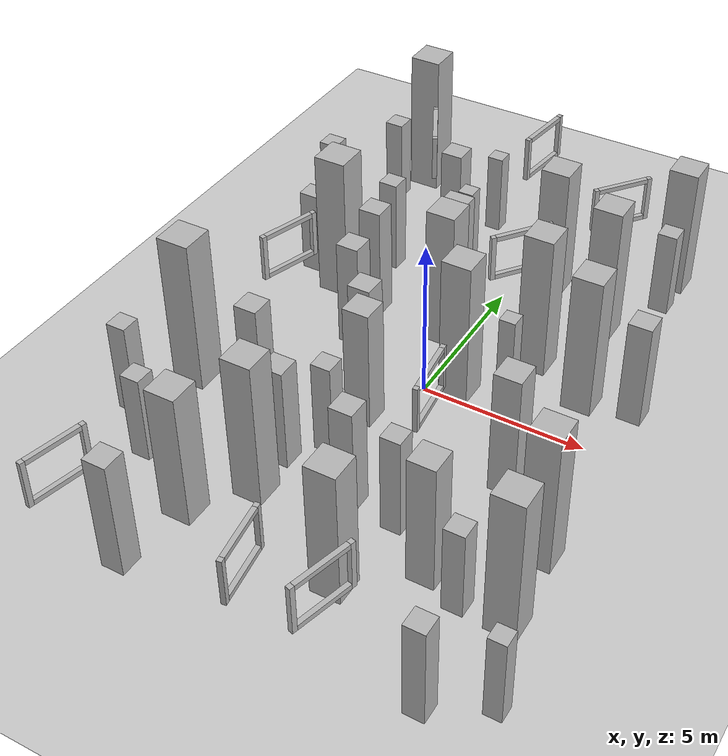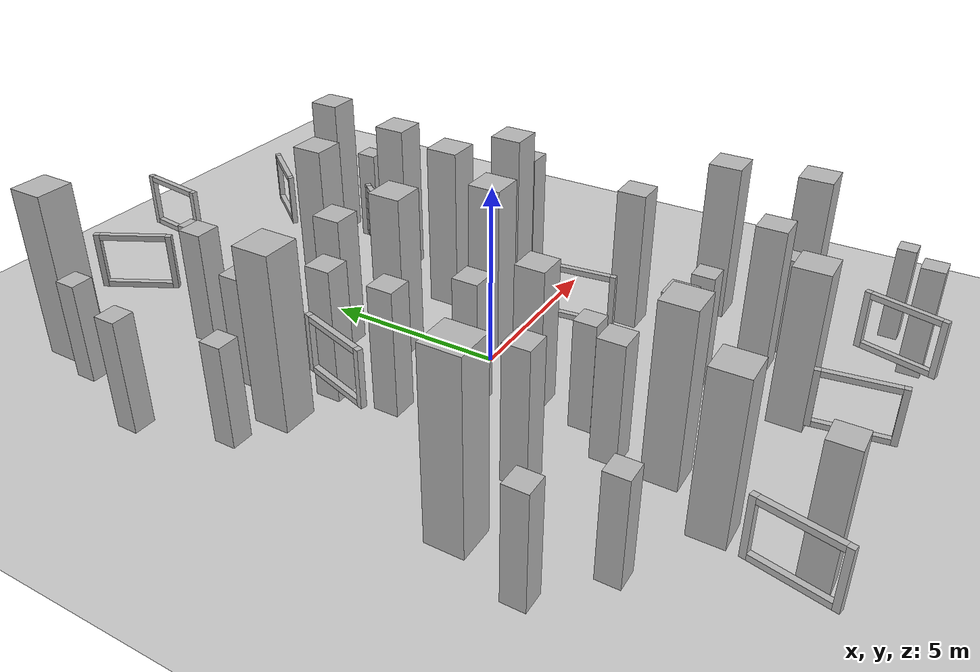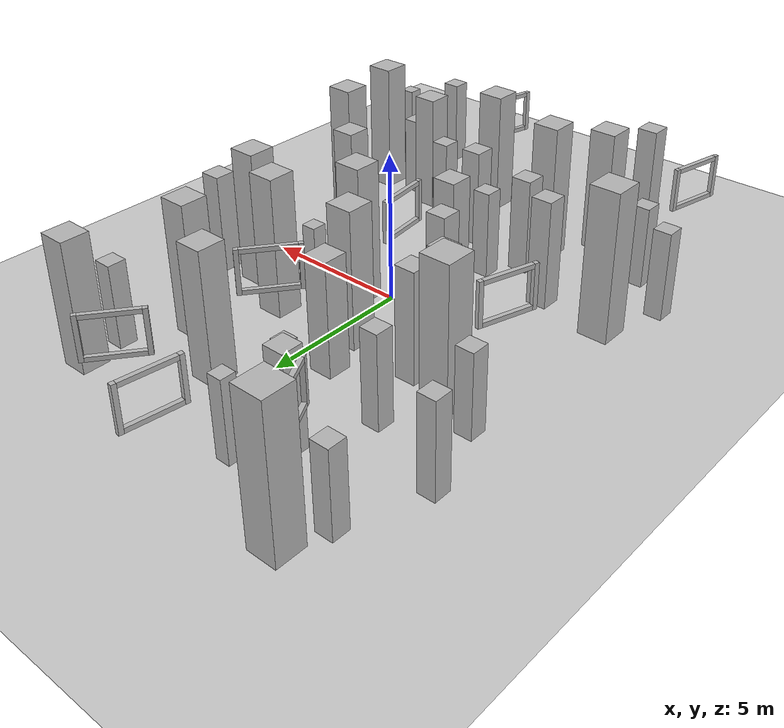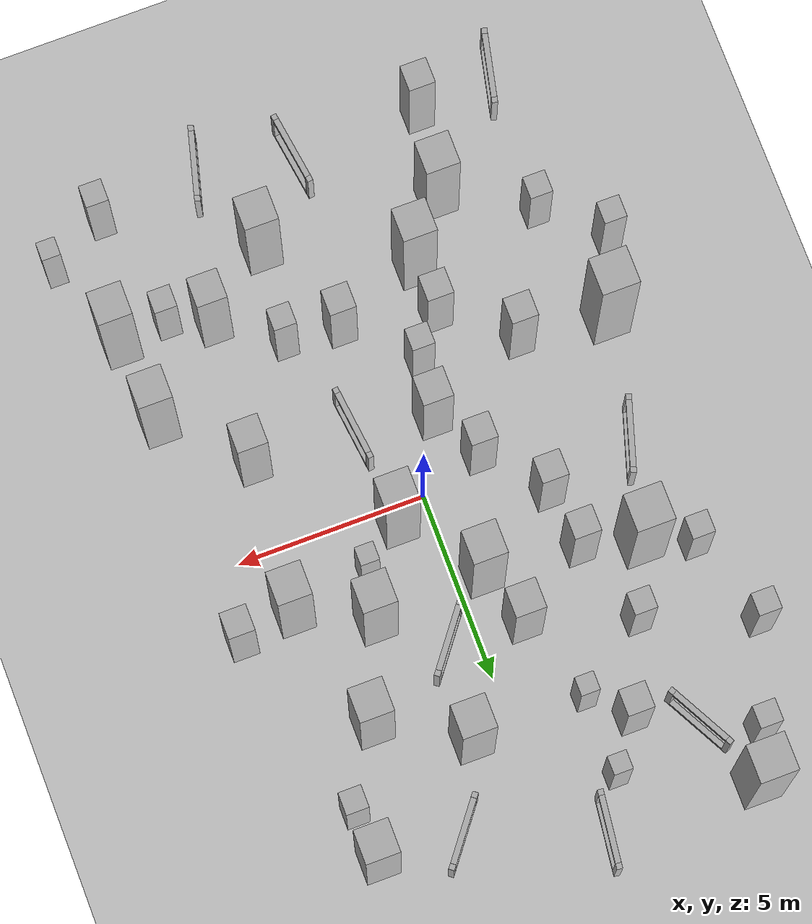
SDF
<sdf version="1.7">
 <world name="default">
  <model name="ground_plane">
   <static>1</static>
   <link name="link">
    <collision name="collision">
     <geometry><plane><normal>0 0 1</normal><size>200 200</size></plane></geometry>
     <surface>
      <contact><collide_bitmask>65535</collide_bitmask></contact>
      <friction><ode><mu>100</mu><mu2>50</mu2></ode></friction>
     </surface>
    </collision>
    <visual name="visual">
     <cast_shadows>0</cast_shadows>
     <geometry><plane><normal>0 0 1</normal><size>200 200</size></plane></geometry>
     <material>
      <script><uri>file://media/materials/scripts/gazebo.material</uri><name>Gazebo/Grey</name></script>
     </material>
    </visual>
   </link>
  </model>
  <model name="box_3">
   <static>true</static>
   <pose>1.6374741721011254 -7.5035165123878045 2.136414688476459 0.0 0.0 0.0</pose>
   <link name="link">
    <visual name="visual"><geometry><box><size>0.9 0.9 4.3</size></box></geometry></visual>
    <collision name="collision"><geometry><box><size>0.9 0.9 4.3</size></box></geometry></collision>
   </link>
  </model>
  <model name="box_5">
   <static>true</static>
   <pose>-3.901099638529079 4.930214343699699 1.567042621839245 0.0 0.0 0.0</pose>
   <link name="link">
    <visual name="visual"><geometry><box><size>0.6 0.6 3.1</size></box></geometry></visual>
    <collision name="collision"><geometry><box><size>0.6 0.6 3.1</size></box></geometry></collision>
   </link>
  </model>
  <model name="box_7">
   <static>true</static>
   <pose>-1.149961410587398 -3.3038791099475295 1.4869277379629757 0.0 0.0 0.0</pose>
   <link name="link">
    <visual name="visual"><geometry><box><size>0.6 0.6 3.0</size></box></geometry></visual>
    <collision name="collision"><geometry><box><size>0.6 0.6 3.0</size></box></geometry></collision>
   </link>
  </model>
  <model name="box_12">
   <static>true</static>
   <pose>4.154662268284227 1.7442738195147065 2.3055341713984867 0.0 0.0 0.0</pose>
   <link name="link">
    <visual name="visual"><geometry><box><size>0.9 0.9 4.6</size></box></geometry></visual>
    <collision name="collision"><geometry><box><size>0.9 0.9 4.6</size></box></geometry></collision>
   </link>
  </model>
  <model name="box_16">
   <static>true</static>
   <pose>2.0016474286041976 1.335935426501024 1.2670296802397991 0.0 0.0 0.0</pose>
   <link name="link">
    <visual name="visual"><geometry><box><size>0.5 0.5 2.5</size></box></geometry></visual>
    <collision name="collision"><geometry><box><size>0.5 0.5 2.5</size></box></geometry></collision>
   </link>
  </model>
  <model name="box_19">
   <static>true</static>
   <pose>-0.6598568763868897 2.462999022721501 2.314885577255534 0.0 0.0 0.0</pose>
   <link name="link">
    <visual name="visual"><geometry><box><size>0.9 0.9 4.6</size></box></geometry></visual>
    <collision name="collision"><geometry><box><size>0.9 0.9 4.6</size></box></geometry></collision>
   </link>
  </model>
  <model name="box_21">
   <static>true</static>
   <pose>-5.349554603878911 -5.998129897715598 1.4117946340675331 0.0 0.0 0.0</pose>
   <link name="link">
    <visual name="visual"><geometry><box><size>0.6 0.6 2.8</size></box></geometry></visual>
    <collision name="collision"><geometry><box><size>0.6 0.6 2.8</size></box></geometry></collision>
   </link>
  </model>
  <model name="box_24">
   <static>true</static>
   <pose>1.9281860284375085 -4.9544511991091955 1.5869351125205744 0.0 0.0 0.0</pose>
   <link name="link">
    <visual name="visual"><geometry><box><size>0.6 0.6 3.2</size></box></geometry></visual>
    <collision name="collision"><geometry><box><size>0.6 0.6 3.2</size></box></geometry></collision>
   </link>
  </model>
  <model name="box_28">
   <static>true</static>
   <pose>5.873173413648921 -6.407207383195566 2.277308977812114 0.0 0.0 0.0</pose>
   <link name="link">
    <visual name="visual"><geometry><box><size>0.9 0.9 4.6</size></box></geometry></visual>
    <collision name="collision"><geometry><box><size>0.9 0.9 4.6</size></box></geometry></collision>
   </link>
  </model>
  <model name="box_30">
   <static>true</static>
   <pose>-1.9374738062222399 6.321716639206549 1.3022219802854855 0.0 0.0 0.0</pose>
   <link name="link">
    <visual name="visual"><geometry><box><size>0.5 0.5 2.6</size></box></geometry></visual>
    <collision name="collision"><geometry><box><size>0.5 0.5 2.6</size></box></geometry></collision>
   </link>
  </model>
  <model name="box_32">
   <static>true</static>
   <pose>4.472853406482912 7.029900539645439 1.4248793129259325 0.0 0.0 0.0</pose>
   <link name="link">
    <visual name="visual"><geometry><box><size>0.6 0.6 2.8</size></box></geometry></visual>
    <collision name="collision"><geometry><box><size>0.6 0.6 2.8</size></box></geometry></collision>
   </link>
  </model>
  <model name="box_35">
   <static>true</static>
   <pose>-1.6689101174333771 -0.44696366028218293 1.765582517739746 0.0 0.0 0.0</pose>
   <link name="link">
    <visual name="visual"><geometry><box><size>0.7 0.7 3.5</size></box></geometry></visual>
    <collision name="collision"><geometry><box><size>0.7 0.7 3.5</size></box></geometry></collision>
   </link>
  </model>
  <model name="box_36">
   <static>true</static>
   <pose>3.791141431803112 -2.2452676537238965 2.018687643699053 0.0 0.0 0.0</pose>
   <link name="link">
    <visual name="visual"><geometry><box><size>0.8 0.8 4.0</size></box></geometry></visual>
    <collision name="collision"><geometry><box><size>0.8 0.8 4.0</size></box></geometry></collision>
   </link>
  </model>
  <model name="box_38">
   <static>true</static>
   <pose>5.631250221103311 1.97665094720257 1.6966540770779726 0.0 0.0 0.0</pose>
   <link name="link">
    <visual name="visual"><geometry><box><size>0.7 0.7 3.4</size></box></geometry></visual>
    <collision name="collision"><geometry><box><size>0.7 0.7 3.4</size></box></geometry></collision>
   </link>
  </model>
  <model name="box_39">
   <static>true</static>
   <pose>-6.760529323008647 6.018683804761302 1.5469005423583926 0.0 0.0 0.0</pose>
   <link name="link">
    <visual name="visual"><geometry><box><size>0.6 0.6 3.1</size></box></geometry></visual>
    <collision name="collision"><geometry><box><size>0.6 0.6 3.1</size></box></geometry></collision>
   </link>
  </model>
  <model name="box_40">
   <static>true</static>
   <pose>4.345088373565211 8.351698227290619 2.173059064849017 0.0 0.0 0.0</pose>
   <link name="link">
    <visual name="visual"><geometry><box><size>0.9 0.9 4.3</size></box></geometry></visual>
    <collision name="collision"><geometry><box><size>0.9 0.9 4.3</size></box></geometry></collision>
   </link>
  </model>
  <model name="box_41">
   <static>true</static>
   <pose>-1.9727804711928307 8.446386999244197 1.3515582533511177 0.0 0.0 0.0</pose>
   <link name="link">
    <visual name="visual"><geometry><box><size>0.5 0.5 2.7</size></box></geometry></visual>
    <collision name="collision"><geometry><box><size>0.5 0.5 2.7</size></box></geometry></collision>
   </link>
  </model>
  <model name="box_42">
   <static>true</static>
   <pose>-2.8641099914187933 7.1854738042553805 1.6404718298055347 0.0 0.0 0.0</pose>
   <link name="link">
    <visual name="visual"><geometry><box><size>0.7 0.7 3.3</size></box></geometry></visual>
    <collision name="collision"><geometry><box><size>0.7 0.7 3.3</size></box></geometry></collision>
   </link>
  </model>
  <model name="box_45">
   <static>true</static>
   <pose>1.0927321830077261 6.3478920243861054 2.204699280579846 0.0 0.0 0.0</pose>
   <link name="link">
    <visual name="visual"><geometry><box><size>0.9 0.9 4.4</size></box></geometry></visual>
    <collision name="collision"><geometry><box><size>0.9 0.9 4.4</size></box></geometry></collision>
   </link>
  </model>
  <model name="box_51">
   <static>true</static>
   <pose>-1.9723137954788115 -4.332571210216029 1.673909459743472 0.0 0.0 0.0</pose>
   <link name="link">
    <visual name="visual"><geometry><box><size>0.7 0.7 3.3</size></box></geometry></visual>
    <collision name="collision"><geometry><box><size>0.7 0.7 3.3</size></box></geometry></collision>
   </link>
  </model>
  <model name="box_52">
   <static>true</static>
   <pose>6.798217343340941 -8.794127891689296 1.3471029451879781 0.0 0.0 0.0</pose>
   <link name="link">
    <visual name="visual"><geometry><box><size>0.5 0.5 2.7</size></box></geometry></visual>
    <collision name="collision"><geometry><box><size>0.5 0.5 2.7</size></box></geometry></collision>
   </link>
  </model>
  <model name="box_59">
   <static>true</static>
   <pose>2.286156041978188 2.6676546383961295 2.3624028446304326 0.0 0.0 0.0</pose>
   <link name="link">
    <visual name="visual"><geometry><box><size>0.9 0.9 4.7</size></box></geometry></visual>
    <collision name="collision"><geometry><box><size>0.9 0.9 4.7</size></box></geometry></collision>
   </link>
  </model>
  <model name="box_63">
   <static>true</static>
   <pose>-6.8350867048885 -4.677663422589 1.5209972271922814 0.0 0.0 0.0</pose>
   <link name="link">
    <visual name="visual"><geometry><box><size>0.6 0.6 3.0</size></box></geometry></visual>
    <collision name="collision"><geometry><box><size>0.6 0.6 3.0</size></box></geometry></collision>
   </link>
  </model>
  <model name="box_64">
   <static>true</static>
   <pose>-2.9699520653689113 1.0597293070240692 1.750846045593824 0.0 0.0 0.0</pose>
   <link name="link">
    <visual name="visual"><geometry><box><size>0.7 0.7 3.5</size></box></geometry></visual>
    <collision name="collision"><geometry><box><size>0.7 0.7 3.5</size></box></geometry></collision>
   </link>
  </model>
  <model name="box_65">
   <static>true</static>
   <pose>4.559785438473767 -6.525660019454738 1.3994833442795747 0.0 0.0 0.0</pose>
   <link name="link">
    <visual name="visual"><geometry><box><size>0.6 0.6 2.8</size></box></geometry></visual>
    <collision name="collision"><geometry><box><size>0.6 0.6 2.8</size></box></geometry></collision>
   </link>
  </model>
  <model name="box_68">
   <static>true</static>
   <pose>-3.1929498904135443 2.6838757074767337 1.8319721185870084 0.0 0.0 0.0</pose>
   <link name="link">
    <visual name="visual"><geometry><box><size>0.7 0.7 3.7</size></box></geometry></visual>
    <collision name="collision"><geometry><box><size>0.7 0.7 3.7</size></box></geometry></collision>
   </link>
  </model>
  <model name="box_71">
   <static>true</static>
   <pose>3.2886073253509274 5.1126903984498036 2.2612772892453545 0.0 0.0 0.0</pose>
   <link name="link">
    <visual name="visual"><geometry><box><size>0.9 0.9 4.5</size></box></geometry></visual>
    <collision name="collision"><geometry><box><size>0.9 0.9 4.5</size></box></geometry></collision>
   </link>
  </model>
  <model name="box_76">
   <static>true</static>
   <pose>5.249219970856885 -9.641345203966608 1.5561383368883643 0.0 0.0 0.0</pose>
   <link name="link">
    <visual name="visual"><geometry><box><size>0.6 0.6 3.1</size></box></geometry></visual>
    <collision name="collision"><geometry><box><size>0.6 0.6 3.1</size></box></geometry></collision>
   </link>
  </model>
  <model name="box_77">
   <static>true</static>
   <pose>-0.9263325911271707 -1.7792653165331238 1.9629951117122544 0.0 0.0 0.0</pose>
   <link name="link">
    <visual name="visual"><geometry><box><size>0.8 0.8 3.9</size></box></geometry></visual>
    <collision name="collision"><geometry><box><size>0.8 0.8 3.9</size></box></geometry></collision>
   </link>
  </model>
  <model name="box_78">
   <static>true</static>
   <pose>-3.1026827783855246 -7.259072692983346 2.1697435533034986 0.0 0.0 0.0</pose>
   <link name="link">
    <visual name="visual"><geometry><box><size>0.9 0.9 4.3</size></box></geometry></visual>
    <collision name="collision"><geometry><box><size>0.9 0.9 4.3</size></box></geometry></collision>
   </link>
  </model>
  <model name="box_81">
   <static>true</static>
   <pose>-5.798767409336731 8.597310220572368 1.3851291635643586 0.0 0.0 0.0</pose>
   <link name="link">
    <visual name="visual"><geometry><box><size>0.6 0.6 2.8</size></box></geometry></visual>
    <collision name="collision"><geometry><box><size>0.6 0.6 2.8</size></box></geometry></collision>
   </link>
  </model>
  <model name="box_82">
   <static>true</static>
   <pose>-5.977036666980364 3.6041626208664788 1.3954942858404054 0.0 0.0 0.0</pose>
   <link name="link">
    <visual name="visual"><geometry><box><size>0.6 0.6 2.8</size></box></geometry></visual>
    <collision name="collision"><geometry><box><size>0.6 0.6 2.8</size></box></geometry></collision>
   </link>
  </model>
  <model name="box_84">
   <static>true</static>
   <pose>-3.4314039759266315 -9.526432634611737 1.8528716115264787 0.0 0.0 0.0</pose>
   <link name="link">
    <visual name="visual"><geometry><box><size>0.7 0.7 3.7</size></box></geometry></visual>
    <collision name="collision"><geometry><box><size>0.7 0.7 3.7</size></box></geometry></collision>
   </link>
  </model>
  <model name="box_85">
   <static>true</static>
   <pose>-5.231858211794101 9.859980106281405 2.401472119952705 0.0 0.0 0.0</pose>
   <link name="link">
    <visual name="visual"><geometry><box><size>1.0 1.0 4.8</size></box></geometry></visual>
    <collision name="collision"><geometry><box><size>1.0 1.0 4.8</size></box></geometry></collision>
   </link>
  </model>
  <model name="box_93">
   <static>true</static>
   <pose>-1.1758109340823424 3.9772366630998803 1.923240569579669 0.0 0.0 0.0</pose>
   <link name="link">
    <visual name="visual"><geometry><box><size>0.8 0.8 3.8</size></box></geometry></visual>
    <collision name="collision"><geometry><box><size>0.8 0.8 3.8</size></box></geometry></collision>
   </link>
  </model>
  <model name="box_102">
   <static>true</static>
   <pose>0.4483375277653465 -4.825162874936888 1.6995308805455562 0.0 0.0 0.0</pose>
   <link name="link">
    <visual name="visual"><geometry><box><size>0.7 0.7 3.4</size></box></geometry></visual>
    <collision name="collision"><geometry><box><size>0.7 0.7 3.4</size></box></geometry></collision>
   </link>
  </model>
  <model name="box_103">
   <static>true</static>
   <pose>-4.703819975883636 3.0972862836514246 2.4103803295662587 0.0 0.0 0.0</pose>
   <link name="link">
    <visual name="visual"><geometry><box><size>1.0 1.0 4.8</size></box></geometry></visual>
    <collision name="collision"><geometry><box><size>1.0 1.0 4.8</size></box></geometry></collision>
   </link>
  </model>
  <model name="box_104">
   <static>true</static>
   <pose>-1.9137028017793511 -5.729892390359861 2.348382545907523 0.0 0.0 0.0</pose>
   <link name="link">
    <visual name="visual"><geometry><box><size>0.9 0.9 4.7</size></box></geometry></visual>
    <collision name="collision"><geometry><box><size>0.9 0.9 4.7</size></box></geometry></collision>
   </link>
  </model>
  <model name="box_105">
   <static>true</static>
   <pose>0.8845889473123094 0.5017853023836327 2.3457996639570795 0.0 0.0 0.0</pose>
   <link name="link">
    <visual name="visual"><geometry><box><size>0.9 0.9 4.7</size></box></geometry></visual>
    <collision name="collision"><geometry><box><size>0.9 0.9 4.7</size></box></geometry></collision>
   </link>
  </model>
  <model name="box_115">
   <static>true</static>
   <pose>-6.034898037366467 -2.7039892044717506 2.494588051021787 0.0 0.0 0.0</pose>
   <link name="link">
    <visual name="visual"><geometry><box><size>1.0 1.0 5.0</size></box></geometry></visual>
    <collision name="collision"><geometry><box><size>1.0 1.0 5.0</size></box></geometry></collision>
   </link>
  </model>
  <model name="box_117">
   <static>true</static>
   <pose>5.66218194391589 -4.0874319169915285 2.2602143555469265 0.0 0.0 0.0</pose>
   <link name="link">
    <visual name="visual"><geometry><box><size>0.9 0.9 4.5</size></box></geometry></visual>
    <collision name="collision"><geometry><box><size>0.9 0.9 4.5</size></box></geometry></collision>
   </link>
  </model>
  <model name="box_118">
   <static>true</static>
   <pose>-3.6979912992955235 -2.9526057179941345 1.8646679392989285 0.0 0.0 0.0</pose>
   <link name="link">
    <visual name="visual"><geometry><box><size>0.7 0.7 3.7</size></box></geometry></visual>
    <collision name="collision"><geometry><box><size>0.7 0.7 3.7</size></box></geometry></collision>
   </link>
  </model>
  <model name="box_119">
   <static>true</static>
   <pose>3.465455286651885 -6.051477757185446 2.0672624394787515 0.0 0.0 0.0</pose>
   <link name="link">
    <visual name="visual"><geometry><box><size>0.8 0.8 4.1</size></box></geometry></visual>
    <collision name="collision"><geometry><box><size>0.8 0.8 4.1</size></box></geometry></collision>
   </link>
  </model>
  <model name="block_1">
   <pose>0.12081032278361548 -9.137055454709184 1.8995171241418918 0.0 0.0 0.14068325014009186</pose>
   <static>true</static>
   <link name="right_vertical_edge">
    <pose>0 0.925 0 0 0 0</pose>
    <visual name="right_visual">
     <geometry><box><size>0.15 0.15 1.5</size></box></geometry>
     <material>Gazebo/Blue</material>
    </visual>
    <collision name="right_collision"><geometry><box><size>0.15 0.15 1.5</size></box></geometry></collision>
   </link>
   <link name="left_vertical_edge">
    <pose>0 -0.925 0 0 0 0</pose>
    <visual name="left_visual">
     <geometry><box><size>0.15 0.15 1.5</size></box></geometry>
     <material>Gazebo/Blue</material>
    </visual>
    <collision name="left_collision"><geometry><box><size>0.15 0.15 1.5</size></box></geometry></collision>
   </link>
   <link name="top_horizontal_edge">
    <pose>0 0 0.675 0 0 0</pose>
    <visual name="top_visual">
     <geometry><box><size>0.15 1.7 0.15</size></box></geometry>
     <material>Gazebo/Blue</material>
    </visual>
    <collision name="top_collision"><geometry><box><size>0.15 1.7 0.15</size></box></geometry></collision>
   </link>
   <link name="bottom_horizontal_edge">
    <pose>0 0 -0.675 0 0 0</pose>
    <visual name="bottom_visual">
     <geometry><box><size>0.15 1.7  0.15</size></box></geometry>
     <material>Gazebo/Blue</material>
    </visual>
    <collision name="bottom_collision"><geometry><box><size>0.15 1.7 0.15</size></box></geometry></collision>
   </link>
   <joint name="right-top_joint" type="fixed">
    <parent>right_vertical_edge</parent>
    <child>top_horizontal_edge</child>
    <origin xyz="-0.925 0 0 0 0 0"/>
   </joint>
   <joint name="left-top_joint" type="fixed">
    <parent>left_vertical_edge</parent>
    <child>top_horizontal_edge</child>
    <origin xyz="0.925 0 0 0 0 0"/>
   </joint>
   <joint name="right-bottom_joint" type="fixed">
    <parent>right_vertical_edge</parent>
    <child>bottom_horizontal_edge</child>
    <origin xyz="-0.925 0 0 0 0 0"/>
   </joint>
   <joint name="left-bottom_joint" type="fixed">
    <parent>left_vertical_edge</parent>
    <child>bottom_horizontal_edge</child>
    <origin xyz="0.925 0 0 0 0 0"/>
   </joint>
  </model>
  <model name="block_3">
   <pose>1.1763255443750857 -1.8644033313018191 1.9894545826579777 0.0 0.0 0.11298075179957999</pose>
   <static>true</static>
   <link name="right_vertical_edge">
    <pose>0 0.925 0 0 0 0</pose>
    <visual name="right_visual">
     <geometry><box><size>0.15 0.15 1.5</size></box></geometry>
     <material>Gazebo/Blue</material>
    </visual>
    <collision name="right_collision"><geometry><box><size>0.15 0.15 1.5</size></box></geometry></collision>
   </link>
   <link name="left_vertical_edge">
    <pose>0 -0.925 0 0 0 0</pose>
    <visual name="left_visual">
     <geometry><box><size>0.15 0.15 1.5</size></box></geometry>
     <material>Gazebo/Blue</material>
    </visual>
    <collision name="left_collision"><geometry><box><size>0.15 0.15 1.5</size></box></geometry></collision>
   </link>
   <link name="top_horizontal_edge">
    <pose>0 0 0.675 0 0 0</pose>
    <visual name="top_visual">
     <geometry><box><size>0.15 1.7 0.15</size></box></geometry>
     <material>Gazebo/Blue</material>
    </visual>
    <collision name="top_collision"><geometry><box><size>0.15 1.7 0.15</size></box></geometry></collision>
   </link>
   <link name="bottom_horizontal_edge">
    <pose>0 0 -0.675 0 0 0</pose>
    <visual name="bottom_visual">
     <geometry><box><size>0.15 1.7  0.15</size></box></geometry>
     <material>Gazebo/Blue</material>
    </visual>
    <collision name="bottom_collision"><geometry><box><size>0.15 1.7 0.15</size></box></geometry></collision>
   </link>
   <joint name="right-top_joint" type="fixed">
    <parent>right_vertical_edge</parent>
    <child>top_horizontal_edge</child>
    <origin xyz="-0.925 0 0 0 0 0"/>
   </joint>
   <joint name="left-top_joint" type="fixed">
    <parent>left_vertical_edge</parent>
    <child>top_horizontal_edge</child>
    <origin xyz="0.925 0 0 0 0 0"/>
   </joint>
   <joint name="right-bottom_joint" type="fixed">
    <parent>right_vertical_edge</parent>
    <child>bottom_horizontal_edge</child>
    <origin xyz="-0.925 0 0 0 0 0"/>
   </joint>
   <joint name="left-bottom_joint" type="fixed">
    <parent>left_vertical_edge</parent>
    <child>bottom_horizontal_edge</child>
    <origin xyz="0.925 0 0 0 0 0"/>
   </joint>
  </model>
  <model name="block_7">
   <pose>-5.132354059744518 0.960737083321261 2.6751947284632935 0.0 0.0 -0.3070080923898518</pose>
   <static>true</static>
   <link name="right_vertical_edge">
    <pose>0 0.925 0 0 0 0</pose>
    <visual name="right_visual">
     <geometry><box><size>0.15 0.15 1.5</size></box></geometry>
     <material>Gazebo/Blue</material>
    </visual>
    <collision name="right_collision"><geometry><box><size>0.15 0.15 1.5</size></box></geometry></collision>
   </link>
   <link name="left_vertical_edge">
    <pose>0 -0.925 0 0 0 0</pose>
    <visual name="left_visual">
     <geometry><box><size>0.15 0.15 1.5</size></box></geometry>
     <material>Gazebo/Blue</material>
    </visual>
    <collision name="left_collision"><geometry><box><size>0.15 0.15 1.5</size></box></geometry></collision>
   </link>
   <link name="top_horizontal_edge">
    <pose>0 0 0.675 0 0 0</pose>
    <visual name="top_visual">
     <geometry><box><size>0.15 1.7 0.15</size></box></geometry>
     <material>Gazebo/Blue</material>
    </visual>
    <collision name="top_collision"><geometry><box><size>0.15 1.7 0.15</size></box></geometry></collision>
   </link>
   <link name="bottom_horizontal_edge">
    <pose>0 0 -0.675 0 0 0</pose>
    <visual name="bottom_visual">
     <geometry><box><size>0.15 1.7  0.15</size></box></geometry>
     <material>Gazebo/Blue</material>
    </visual>
    <collision name="bottom_collision"><geometry><box><size>0.15 1.7 0.15</size></box></geometry></collision>
   </link>
   <joint name="right-top_joint" type="fixed">
    <parent>right_vertical_edge</parent>
    <child>top_horizontal_edge</child>
    <origin xyz="-0.925 0 0 0 0 0"/>
   </joint>
   <joint name="left-top_joint" type="fixed">
    <parent>left_vertical_edge</parent>
    <child>top_horizontal_edge</child>
    <origin xyz="0.925 0 0 0 0 0"/>
   </joint>
   <joint name="right-bottom_joint" type="fixed">
    <parent>right_vertical_edge</parent>
    <child>bottom_horizontal_edge</child>
    <origin xyz="-0.925 0 0 0 0 0"/>
   </joint>
   <joint name="left-bottom_joint" type="fixed">
    <parent>left_vertical_edge</parent>
    <child>bottom_horizontal_edge</child>
    <origin xyz="0.925 0 0 0 0 0"/>
   </joint>
  </model>
  <model name="block_11">
   <pose>-4.163504884917701 8.152374203739509 2.675888943476189 0.0 0.0 0.4870202976848966</pose>
   <static>true</static>
   <link name="right_vertical_edge">
    <pose>0 0.925 0 0 0 0</pose>
    <visual name="right_visual">
     <geometry><box><size>0.15 0.15 1.5</size></box></geometry>
     <material>Gazebo/Blue</material>
    </visual>
    <collision name="right_collision"><geometry><box><size>0.15 0.15 1.5</size></box></geometry></collision>
   </link>
   <link name="left_vertical_edge">
    <pose>0 -0.925 0 0 0 0</pose>
    <visual name="left_visual">
     <geometry><box><size>0.15 0.15 1.5</size></box></geometry>
     <material>Gazebo/Blue</material>
    </visual>
    <collision name="left_collision"><geometry><box><size>0.15 0.15 1.5</size></box></geometry></collision>
   </link>
   <link name="top_horizontal_edge">
    <pose>0 0 0.675 0 0 0</pose>
    <visual name="top_visual">
     <geometry><box><size>0.15 1.7 0.15</size></box></geometry>
     <material>Gazebo/Blue</material>
    </visual>
    <collision name="top_collision"><geometry><box><size>0.15 1.7 0.15</size></box></geometry></collision>
   </link>
   <link name="bottom_horizontal_edge">
    <pose>0 0 -0.675 0 0 0</pose>
    <visual name="bottom_visual">
     <geometry><box><size>0.15 1.7  0.15</size></box></geometry>
     <material>Gazebo/Blue</material>
    </visual>
    <collision name="bottom_collision"><geometry><box><size>0.15 1.7 0.15</size></box></geometry></collision>
   </link>
   <joint name="right-top_joint" type="fixed">
    <parent>right_vertical_edge</parent>
    <child>top_horizontal_edge</child>
    <origin xyz="-0.925 0 0 0 0 0"/>
   </joint>
   <joint name="left-top_joint" type="fixed">
    <parent>left_vertical_edge</parent>
    <child>top_horizontal_edge</child>
    <origin xyz="0.925 0 0 0 0 0"/>
   </joint>
   <joint name="right-bottom_joint" type="fixed">
    <parent>right_vertical_edge</parent>
    <child>bottom_horizontal_edge</child>
    <origin xyz="-0.925 0 0 0 0 0"/>
   </joint>
   <joint name="left-bottom_joint" type="fixed">
    <parent>left_vertical_edge</parent>
    <child>bottom_horizontal_edge</child>
    <origin xyz="0.925 0 0 0 0 0"/>
   </joint>
  </model>
  <model name="block_13">
   <pose>2.225629727537086 8.682572105226573 2.091458595314808 0.0 0.0 -0.6619964320449255</pose>
   <static>true</static>
   <link name="right_vertical_edge">
    <pose>0 0.925 0 0 0 0</pose>
    <visual name="right_visual">
     <geometry><box><size>0.15 0.15 1.5</size></box></geometry>
     <material>Gazebo/Blue</material>
    </visual>
    <collision name="right_collision"><geometry><box><size>0.15 0.15 1.5</size></box></geometry></collision>
   </link>
   <link name="left_vertical_edge">
    <pose>0 -0.925 0 0 0 0</pose>
    <visual name="left_visual">
     <geometry><box><size>0.15 0.15 1.5</size></box></geometry>
     <material>Gazebo/Blue</material>
    </visual>
    <collision name="left_collision"><geometry><box><size>0.15 0.15 1.5</size></box></geometry></collision>
   </link>
   <link name="top_horizontal_edge">
    <pose>0 0 0.675 0 0 0</pose>
    <visual name="top_visual">
     <geometry><box><size>0.15 1.7 0.15</size></box></geometry>
     <material>Gazebo/Blue</material>
    </visual>
    <collision name="top_collision"><geometry><box><size>0.15 1.7 0.15</size></box></geometry></collision>
   </link>
   <link name="bottom_horizontal_edge">
    <pose>0 0 -0.675 0 0 0</pose>
    <visual name="bottom_visual">
     <geometry><box><size>0.15 1.7  0.15</size></box></geometry>
     <material>Gazebo/Blue</material>
    </visual>
    <collision name="bottom_collision"><geometry><box><size>0.15 1.7 0.15</size></box></geometry></collision>
   </link>
   <joint name="right-top_joint" type="fixed">
    <parent>right_vertical_edge</parent>
    <child>top_horizontal_edge</child>
    <origin xyz="-0.925 0 0 0 0 0"/>
   </joint>
   <joint name="left-top_joint" type="fixed">
    <parent>left_vertical_edge</parent>
    <child>top_horizontal_edge</child>
    <origin xyz="0.925 0 0 0 0 0"/>
   </joint>
   <joint name="right-bottom_joint" type="fixed">
    <parent>right_vertical_edge</parent>
    <child>bottom_horizontal_edge</child>
    <origin xyz="-0.925 0 0 0 0 0"/>
   </joint>
   <joint name="left-bottom_joint" type="fixed">
    <parent>left_vertical_edge</parent>
    <child>bottom_horizontal_edge</child>
    <origin xyz="0.925 0 0 0 0 0"/>
   </joint>
  </model>
  <model name="block_17">
   <pose>-5.29880155799645 -9.303871329792768 2.308407084032827 0.0 0.0 -0.22374323054703482</pose>
   <static>true</static>
   <link name="right_vertical_edge">
    <pose>0 0.925 0 0 0 0</pose>
    <visual name="right_visual">
     <geometry><box><size>0.15 0.15 1.5</size></box></geometry>
     <material>Gazebo/Blue</material>
    </visual>
    <collision name="right_collision"><geometry><box><size>0.15 0.15 1.5</size></box></geometry></collision>
   </link>
   <link name="left_vertical_edge">
    <pose>0 -0.925 0 0 0 0</pose>
    <visual name="left_visual">
     <geometry><box><size>0.15 0.15 1.5</size></box></geometry>
     <material>Gazebo/Blue</material>
    </visual>
    <collision name="left_collision"><geometry><box><size>0.15 0.15 1.5</size></box></geometry></collision>
   </link>
   <link name="top_horizontal_edge">
    <pose>0 0 0.675 0 0 0</pose>
    <visual name="top_visual">
     <geometry><box><size>0.15 1.7 0.15</size></box></geometry>
     <material>Gazebo/Blue</material>
    </visual>
    <collision name="top_collision"><geometry><box><size>0.15 1.7 0.15</size></box></geometry></collision>
   </link>
   <link name="bottom_horizontal_edge">
    <pose>0 0 -0.675 0 0 0</pose>
    <visual name="bottom_visual">
     <geometry><box><size>0.15 1.7  0.15</size></box></geometry>
     <material>Gazebo/Blue</material>
    </visual>
    <collision name="bottom_collision"><geometry><box><size>0.15 1.7 0.15</size></box></geometry></collision>
   </link>
   <joint name="right-top_joint" type="fixed">
    <parent>right_vertical_edge</parent>
    <child>top_horizontal_edge</child>
    <origin xyz="-0.925 0 0 0 0 0"/>
   </joint>
   <joint name="left-top_joint" type="fixed">
    <parent>left_vertical_edge</parent>
    <child>top_horizontal_edge</child>
    <origin xyz="0.925 0 0 0 0 0"/>
   </joint>
   <joint name="right-bottom_joint" type="fixed">
    <parent>right_vertical_edge</parent>
    <child>bottom_horizontal_edge</child>
    <origin xyz="-0.925 0 0 0 0 0"/>
   </joint>
   <joint name="left-bottom_joint" type="fixed">
    <parent>left_vertical_edge</parent>
    <child>bottom_horizontal_edge</child>
    <origin xyz="0.925 0 0 0 0 0"/>
   </joint>
  </model>
  <model name="block_19">
   <pose>-1.0946625290919219 9.937201540882857 2.487054195152594 0.0 0.0 -0.12950594538279264</pose>
   <static>true</static>
   <link name="right_vertical_edge">
    <pose>0 0.925 0 0 0 0</pose>
    <visual name="right_visual">
     <geometry><box><size>0.15 0.15 1.5</size></box></geometry>
     <material>Gazebo/Blue</material>
    </visual>
    <collision name="right_collision"><geometry><box><size>0.15 0.15 1.5</size></box></geometry></collision>
   </link>
   <link name="left_vertical_edge">
    <pose>0 -0.925 0 0 0 0</pose>
    <visual name="left_visual">
     <geometry><box><size>0.15 0.15 1.5</size></box></geometry>
     <material>Gazebo/Blue</material>
    </visual>
    <collision name="left_collision"><geometry><box><size>0.15 0.15 1.5</size></box></geometry></collision>
   </link>
   <link name="top_horizontal_edge">
    <pose>0 0 0.675 0 0 0</pose>
    <visual name="top_visual">
     <geometry><box><size>0.15 1.7 0.15</size></box></geometry>
     <material>Gazebo/Blue</material>
    </visual>
    <collision name="top_collision"><geometry><box><size>0.15 1.7 0.15</size></box></geometry></collision>
   </link>
   <link name="bottom_horizontal_edge">
    <pose>0 0 -0.675 0 0 0</pose>
    <visual name="bottom_visual">
     <geometry><box><size>0.15 1.7  0.15</size></box></geometry>
     <material>Gazebo/Blue</material>
    </visual>
    <collision name="bottom_collision"><geometry><box><size>0.15 1.7 0.15</size></box></geometry></collision>
   </link>
   <joint name="right-top_joint" type="fixed">
    <parent>right_vertical_edge</parent>
    <child>top_horizontal_edge</child>
    <origin xyz="-0.925 0 0 0 0 0"/>
   </joint>
   <joint name="left-top_joint" type="fixed">
    <parent>left_vertical_edge</parent>
    <child>top_horizontal_edge</child>
    <origin xyz="0.925 0 0 0 0 0"/>
   </joint>
   <joint name="right-bottom_joint" type="fixed">
    <parent>right_vertical_edge</parent>
    <child>bottom_horizontal_edge</child>
    <origin xyz="-0.925 0 0 0 0 0"/>
   </joint>
   <joint name="left-bottom_joint" type="fixed">
    <parent>left_vertical_edge</parent>
    <child>bottom_horizontal_edge</child>
    <origin xyz="0.925 0 0 0 0 0"/>
   </joint>
  </model>
  <model name="block_22">
   <pose>0.9065582862749544 4.167343732241367 2.6258060402509034 0.0 0.0 -0.6566625483310676</pose>
   <static>true</static>
   <link name="right_vertical_edge">
    <pose>0 0.925 0 0 0 0</pose>
    <visual name="right_visual">
     <geometry><box><size>0.15 0.15 1.5</size></box></geometry>
     <material>Gazebo/Blue</material>
    </visual>
    <collision name="right_collision"><geometry><box><size>0.15 0.15 1.5</size></box></geometry></collision>
   </link>
   <link name="left_vertical_edge">
    <pose>0 -0.925 0 0 0 0</pose>
    <visual name="left_visual">
     <geometry><box><size>0.15 0.15 1.5</size></box></geometry>
     <material>Gazebo/Blue</material>
    </visual>
    <collision name="left_collision"><geometry><box><size>0.15 0.15 1.5</size></box></geometry></collision>
   </link>
   <link name="top_horizontal_edge">
    <pose>0 0 0.675 0 0 0</pose>
    <visual name="top_visual">
     <geometry><box><size>0.15 1.7 0.15</size></box></geometry>
     <material>Gazebo/Blue</material>
    </visual>
    <collision name="top_collision"><geometry><box><size>0.15 1.7 0.15</size></box></geometry></collision>
   </link>
   <link name="bottom_horizontal_edge">
    <pose>0 0 -0.675 0 0 0</pose>
    <visual name="bottom_visual">
     <geometry><box><size>0.15 1.7  0.15</size></box></geometry>
     <material>Gazebo/Blue</material>
    </visual>
    <collision name="bottom_collision"><geometry><box><size>0.15 1.7 0.15</size></box></geometry></collision>
   </link>
   <joint name="right-top_joint" type="fixed">
    <parent>right_vertical_edge</parent>
    <child>top_horizontal_edge</child>
    <origin xyz="-0.925 0 0 0 0 0"/>
   </joint>
   <joint name="left-top_joint" type="fixed">
    <parent>left_vertical_edge</parent>
    <child>top_horizontal_edge</child>
    <origin xyz="0.925 0 0 0 0 0"/>
   </joint>
   <joint name="right-bottom_joint" type="fixed">
    <parent>right_vertical_edge</parent>
    <child>bottom_horizontal_edge</child>
    <origin xyz="-0.925 0 0 0 0 0"/>
   </joint>
   <joint name="left-bottom_joint" type="fixed">
    <parent>left_vertical_edge</parent>
    <child>bottom_horizontal_edge</child>
    <origin xyz="0.925 0 0 0 0 0"/>
   </joint>
  </model>
  <model name="block_29">
   <pose>2.6132599408975423 -9.452564403915119 2.5103455068046605 0.0 0.0 -0.2596999337076135</pose>
   <static>true</static>
   <link name="right_vertical_edge">
    <pose>0 0.925 0 0 0 0</pose>
    <visual name="right_visual">
     <geometry><box><size>0.15 0.15 1.5</size></box></geometry>
     <material>Gazebo/Blue</material>
    </visual>
    <collision name="right_collision"><geometry><box><size>0.15 0.15 1.5</size></box></geometry></collision>
   </link>
   <link name="left_vertical_edge">
    <pose>0 -0.925 0 0 0 0</pose>
    <visual name="left_visual">
     <geometry><box><size>0.15 0.15 1.5</size></box></geometry>
     <material>Gazebo/Blue</material>
    </visual>
    <collision name="left_collision"><geometry><box><size>0.15 0.15 1.5</size></box></geometry></collision>
   </link>
   <link name="top_horizontal_edge">
    <pose>0 0 0.675 0 0 0</pose>
    <visual name="top_visual">
     <geometry><box><size>0.15 1.7 0.15</size></box></geometry>
     <material>Gazebo/Blue</material>
    </visual>
    <collision name="top_collision"><geometry><box><size>0.15 1.7 0.15</size></box></geometry></collision>
   </link>
   <link name="bottom_horizontal_edge">
    <pose>0 0 -0.675 0 0 0</pose>
    <visual name="bottom_visual">
     <geometry><box><size>0.15 1.7  0.15</size></box></geometry>
     <material>Gazebo/Blue</material>
    </visual>
    <collision name="bottom_collision"><geometry><box><size>0.15 1.7 0.15</size></box></geometry></collision>
   </link>
   <joint name="right-top_joint" type="fixed">
    <parent>right_vertical_edge</parent>
    <child>top_horizontal_edge</child>
    <origin xyz="-0.925 0 0 0 0 0"/>
   </joint>
   <joint name="left-top_joint" type="fixed">
    <parent>left_vertical_edge</parent>
    <child>top_horizontal_edge</child>
    <origin xyz="0.925 0 0 0 0 0"/>
   </joint>
   <joint name="right-bottom_joint" type="fixed">
    <parent>right_vertical_edge</parent>
    <child>bottom_horizontal_edge</child>
    <origin xyz="-0.925 0 0 0 0 0"/>
   </joint>
   <joint name="left-bottom_joint" type="fixed">
    <parent>left_vertical_edge</parent>
    <child>bottom_horizontal_edge</child>
    <origin xyz="0.925 0 0 0 0 0"/>
   </joint>
  </model>
 </world>
</sdf>
